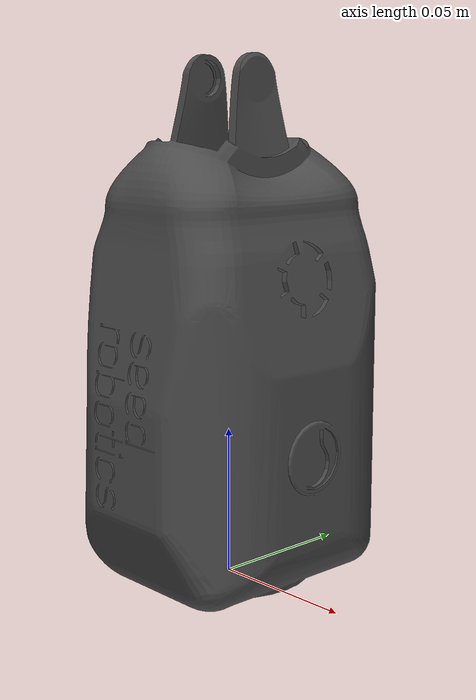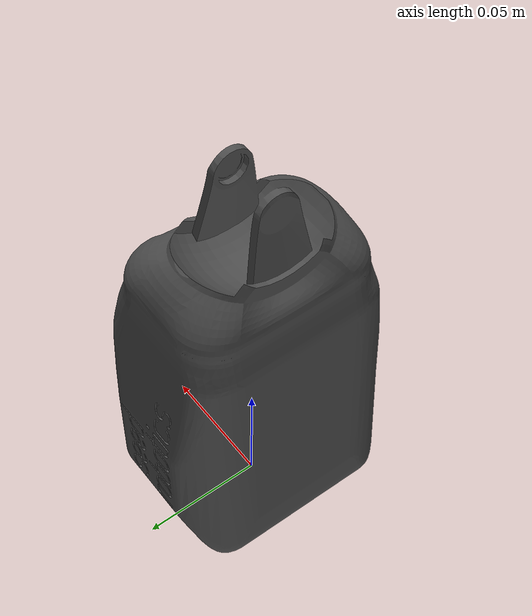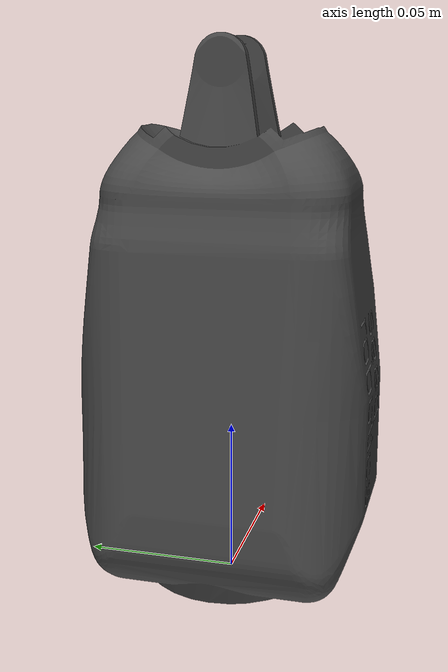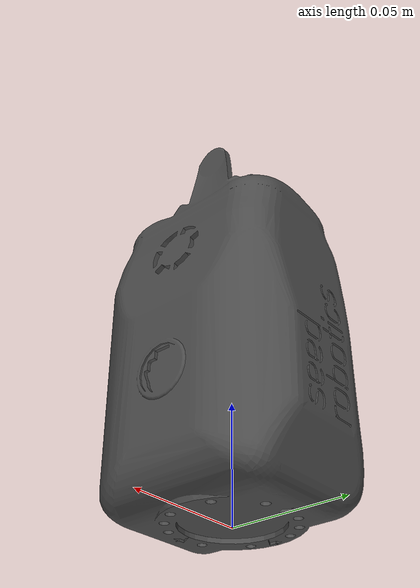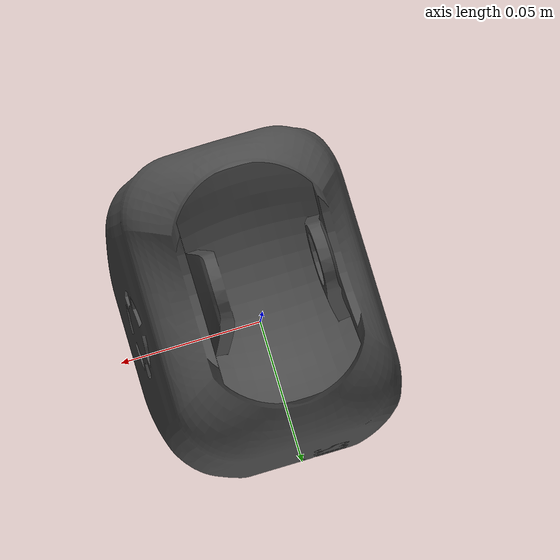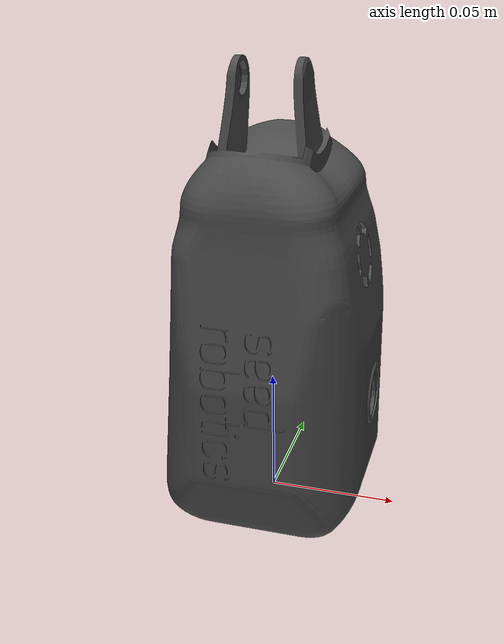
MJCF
<mujoco model="forearm_link">
  <default>
    <default class="visual">
      <geom group="2" type="mesh" contype="0" conaffinity="0"/>
    </default>
    <default class="collision">
      <geom group="3" type="mesh"/>
    </default>
  </default>
  <asset>
    <material name="mtl_forearm_link" specular="0.20000000000000004" shininess="1.0" rgba="0.29803922 0.29803922 0.29803922 1.0"/>
    <mesh file="forearm_link.obj"/>
  </asset>
  <worldbody>
    <body name="forearm_link">
      <geom material="mtl_forearm_link" mesh="forearm_link" class="visual"/>
      <geom mesh="forearm_link" class="collision"/>
    </body>
  </worldbody>
</mujoco>
